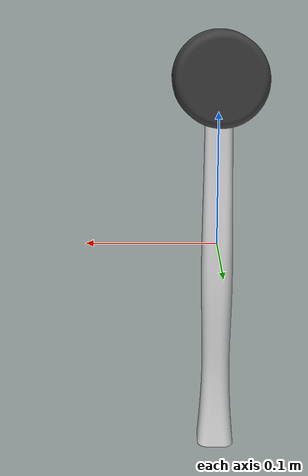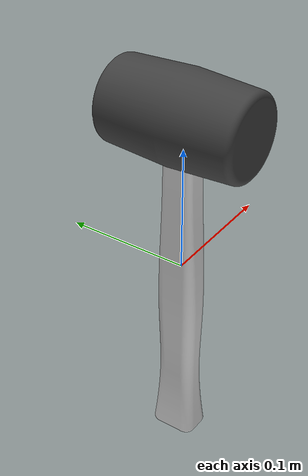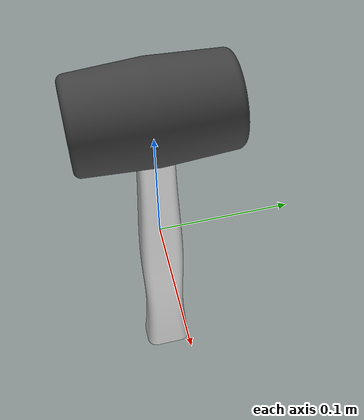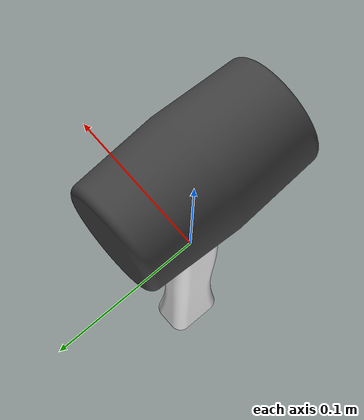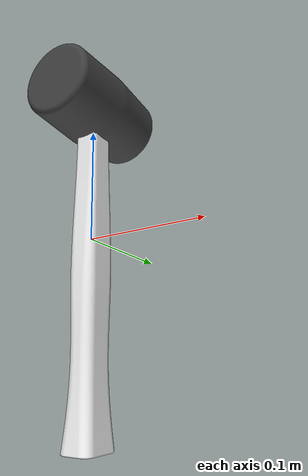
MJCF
<mujoco model="target">
  <compiler meshdir="assets" texturedir="assets" autolimits="true"/>
  <default>
    <default class="visual">
      <geom group="2" type="mesh" contype="0" conaffinity="0"/>
    </default>
    <default class="collision">
      <geom group="3" type="mesh"/>
    </default>
  </default>
  <asset>
    <material name="64,64,64" specular="1.0" shininess="1.0" rgba="0.250980 0.250980 0.250980 1.000000"/>
    <texture type="2d" name="Woods &amp; Plastics.Finish Carpentry.Wood.White Oak" file="Woods &amp; Plastics.Finish Carpentry.Wood.White Oak.png"/>
    <material name="160,40,0" texture="Woods &amp; Plastics.Finish Carpentry.Wood.White Oak" specular="1.0" shininess="1.0"/>
    <mesh file="object_0.obj"/>
    <mesh file="object_1.obj"/>
  </asset>
  <worldbody>
    <body name="object">
      <geom mesh="object_0" material="160,40,0" class="visual"/>
      <geom mesh="object_1" material="64,64,64" class="visual"/>
      <geom mesh="object_0" class="collision"/>
      <geom mesh="object_1" class="collision"/>
    </body>
  </worldbody>
</mujoco>
